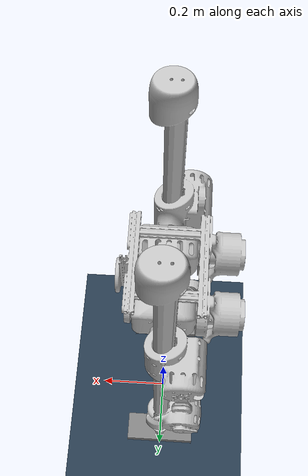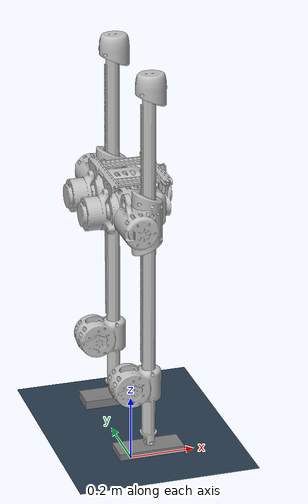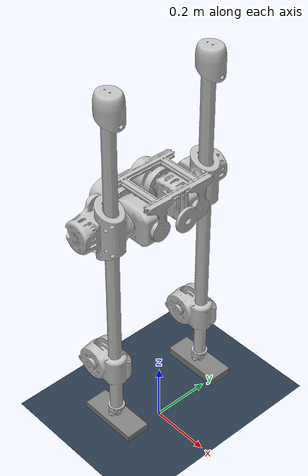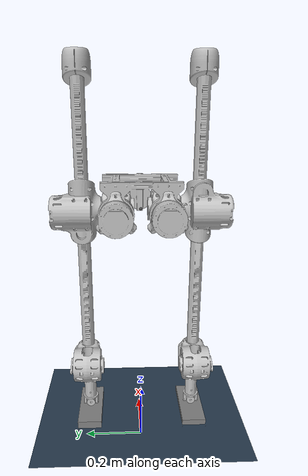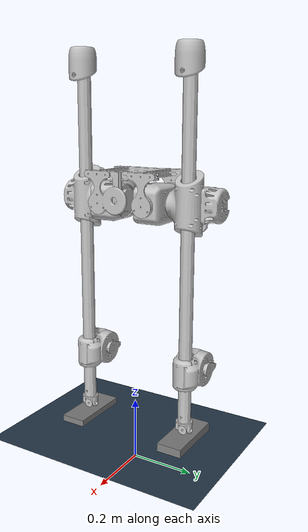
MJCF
<mujoco>
    <!-- Simulation properties -->
    <compiler texturedir="../meshes/"
        meshdir="../meshes/" balanceinertia="true"/>

    <option jacobian="auto">
        <flag multiccd="enable"/>
    </option>

    <option noslip_iterations="2"/>

    <!-- Rendering properties -->
    <visual>
        <rgba haze="0.1 0.1 0.1 1"/>
        <quality shadowsize="4096"/>
        <map stiffness="700" shadowscale="0.5" fogstart="10" fogend="15" zfar="40" haze="0.3"/>
    </visual>

    <!-- Assets -->
    <asset>
        <texture type="skybox" builtin="gradient" rgb1="0.3 0.5 0.7" rgb2="0 0 0" width="512" height="512"/>
        <texture name="texplane" type="2d" builtin="checker" rgb1=".2 .3 .4" rgb2=".1 0.15 0.2"
      width="512" height="512" mark="cross" markrgb=".8 .8 .8"/>

        <material name="matplane" reflectance="0.3" texture="texplane" texrepeat="1 1" texuniform="true"/>
    </asset>

    <asset>
        <hfield name="field" file="snowdon.png" size = "10 10 0.4 1"/>
    </asset>

    <!-- Include slider urdf -->
    <include file="slider_2_0_new_feet.xml"/>

    <!-- World description -->
    <worldbody>
        <!-- Lighting -->
        <light directional="true" diffuse=".4 .4 .4" specular="0.1 0.1 0.1" pos="0 0 5.0" dir="1 0 -1" castshadow="true"/>
        <light directional="true" diffuse=".6 .6 .6" specular="0.2 0.2 0.2" pos="0 0 4" dir="0 0 -1"/>

        <!-- Flat ground plane -->

        <geom name="ground" type="plane" size="0 0 1" pos="0 0 0.1" quat="1 0 0 0" material="matplane" condim="1"/>

    </worldbody>

</mujoco>

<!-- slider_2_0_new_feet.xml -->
<mujoco model="slider_joint_control">
  <compiler angle="radian" meshdir="../meshes/" autolimits="true"/>

  <!-- Default values -->
  <default>
    <joint limited = "true" damping = "0.0" armature = "0"/>
    <position forcelimited = "true" forcerange = "-30 30" />
    <velocity forcelimited = "true" forcerange = "-30 30" />

    <default class = "hip_roll_pos">
      <position kp="200.0" ctrllimited="true" forcelimited = "true" forcerange = "-144 144" ctrlrange="-0.3 0.3"/>
    </default>

    <default class = "hip_roll_vel">
      <velocity  kv="18.0" forcelimited = "true" forcerange = "-144 144" group="1" gear = "1"/>
    </default>

    <default class = "hip_pitch_pos">
      <position kp="100.0" ctrllimited="true" forcelimited = "true" forcerange = "-65 65" ctrlrange="-0.8 0.8"/>
    </default>

    <default class = "hip_pitch_vel">
      <velocity  kv="8.0" forcelimited = "true" forcerange = "-65 65" group="1" gear = "1"/>
    </default>

    <default class = "slide_joint">
      <position ctrllimited="true" kp="2000.0" gear="1" forcerange = "-200 200"/>
    </default>

    <default class = "slide_vel">
      <velocity kv="150.0" group="1" gear = "1" forcerange = "-100 100"/>
    </default>

    <default class = "foot_joint">
        <position forcelimited="true" ctrllimited="true" kp="60.0" gear = "1" forcerange="-15 15"/>
    </default>

    <default class = "foot_vel">
        <velocity forcelimited="true" kv="5.0" group="1" gear ="1" forcerange = "-15 15"/>
    </default>
  </default>

  <!-- Assets -->
  <asset>
    <mesh name="base_link" file="base_link.STL"/>
    <mesh name="Right_Pitch_Casing" file="Right_Pitch_Casing.STL"/>
    <mesh name="Right_Slide_Casing" file="Right_Slide_Casing.STL"/>
    <mesh name="Right_Leg" file="Right_Leg.STL"/>
    <mesh name="Right_Foot_Pitch_Link" file="Right_Foot_Pitch_Link.STL"/>
    <mesh name="Right_Foot" file="Right_Foot.STL"/>
    <mesh name="Left_Pitch_Casing" file="Left_Pitch_Casing.STL"/>
    <mesh name="Left_Slide_Casing" file="Left_Slide_Casing.STL"/>
    <mesh name="Left_Leg" file="Left_Leg.STL"/>
    <mesh name="Left_Foot_Pitch_Link" file="Left_Foot_Pitch_Link.STL"/>
    <mesh name="Left_Foot" file="Left_Foot.STL"/>
  </asset>

  <!-- Robot description -->
  <worldbody>
    <body name = "sensor_base">

    </body>

    <body name="base_link" pos="0 0 0.85">
      <freejoint/>

      <site name = "Torso"/>
      <site name = "Torso-rangefinder1" zaxis = "0 0 -1"/>
      <site name = "Torso-rangefinder2" zaxis = "0.2 0 -1"/>
      <site name = "Torso-rangefinder3" zaxis = "0.4 0 -1"/>
      <site name = "Torso-rangefinder4" zaxis = "0.6 0 -1"/>
      <site name = "Torso-rangefinder5" zaxis = "0.8 0 -1"/>

      <inertial pos="-0.04 0.0 0.0190139" quat="0.707106 0.707106 0.000977246 -0.0010287" mass="3.8" diaginertia="0.00413343 0.00271163 0.00231369"/>

      <geom type="mesh" rgba="0.752941 0.752941 0.752941 1" mesh="base_link"/>
      <body name="Right_Pitch_Casing" pos="0 -0.075 0">
        <inertial pos="-0.1 -0.000261818 7.57108e-06" quat="0.499137 0.498716 0.501955 0.500186" mass="2.5" diaginertia="0.00204306 0.00154557 0.00127401"/>
        <joint name="Right_Roll" pos="0 0 0" axis="-1 0 0" range="-1.57 0.35"/>
        <geom type="mesh" rgba="0.752941 0.752941 0.752941 1" mesh="Right_Pitch_Casing"/>
        <body name="Right_Slide_Casing" pos="0 -0.1042 0">
          <inertial pos="-0.0324497 -0.0178444 0.000925652" quat="0.877891 -0.0251846 0.00443872 0.478178" mass="1.2" diaginertia="0.00191679 0.00171145 0.000840947"/>
          <joint name="Right_Pitch" pos="0 0 0" axis="0 1 0" range="-1.57 1.57"/>
          <geom type="mesh" rgba="0.752941 0.752941 0.752941 1" mesh="Right_Slide_Casing"/>
          <body name="Right_Leg" pos="0 0 -0.7">
            <inertial pos="-0.0233998 0.000112329 0.455008" quat="0.707484 4.63574e-05 6.61193e-06 0.706729" mass="1.9" diaginertia="0.0432293 0.0423994 0.00149023"/>
            <joint name="Right_Slide" pos="0 0 0" axis="0 0 1" type="slide" range="-0.35 0.26"/>
            <geom type="mesh" rgba="0.752941 0.752941 0.752941 1" mesh="Right_Leg"/>
            <body name="Right_Foot_Pitch_Link" pos="0 0 0">
              <inertial pos="6.30628e-05 2.21613e-08 -1.27034e-08" quat="0.707095 2.01965e-06 2.01972e-06 0.707118" mass="0.04" diaginertia="4.37124e-06 4.32351e-06 4.11906e-06"/>
              <joint name="Right_Foot_Pitch" pos="0 0 0" axis="0 1 0" range="-0.52 0.52"/>
              <geom type="mesh" rgba="0.752941 0.752941 0.752941 1" mesh="Right_Foot_Pitch_Link"/>
              <body name="Right_Foot" pos="0 0 0">
                <inertial pos="-0.00123043 0 -0.0249007" quat="0 0.707113 0 0.7071" mass="0.2" diaginertia="0.00718389 0.00635924 0.00483524"/>
                <joint name="Right_Foot_Roll" pos="0 0 0" axis="1 0 0" range="-0.52 0.52"/>
                <geom name = "Right_Foot_Contact" type = "box" size = "0.1 0.04 0.01" mass = "0" pos = "0.0 0 -0.027" rgba = "0.5 0.5 0.5 1.0"/>
                <site name = "Right-Foot" size = "0.2 0.1 0.05" type = "box" rgba = "0.5 0.5 0.5 0.0"/>

                <geom size="0.001" pos="0.1 0.04 -0.044"/>
                <geom size="0.001" pos="0.1 -0.04 -0.044"/>
                <geom size="0.001" pos="-0.1 -0.04 -0.044"/>
                <geom size="0.001" pos="-0.1 0.04 -0.044"/>

              </body>
            </body>
          </body>
        </body>
      </body>
      <body name="Left_Pitch_Casing" pos="0 0.075 0">
        <inertial pos="-0.1 0.000261818 -7.57108e-06" quat="0.501955 0.500186 0.499137 0.498716" mass="2.5" diaginertia="0.00204306 0.00154557 0.00127401"/>
        <joint name="Left_Roll" pos="0 0 0" axis="-1 0 0" range="-0.35 1.57"/>
        <geom type="mesh" rgba="0.752941 0.752941 0.752941 1" mesh="Left_Pitch_Casing"/>
        <body name="Left_Slide_Casing" pos="0 0.1042 0">
          <inertial pos="-0.0324497 0.0178444 -0.000925651" quat="0.478178 -0.00443873 0.0251846 0.87789" mass="1.2" diaginertia="0.00191679 0.00171145 0.000840947"/>
          <joint name="Left_Pitch" pos="0 0 0" axis="0 -1 0" range="-1.57 1.57"/>
          <geom type="mesh" rgba="0.752941 0.752941 0.752941 1" mesh="Left_Slide_Casing"/>
          <body name="Left_Leg" pos="0 0 -0.7">
            <inertial pos="-0.0233998 0.000112329 0.455008" quat="0.707484 4.63574e-05 6.61193e-06 0.706729" mass="1.9" diaginertia="0.0432293 0.0423994 0.00149023"/>
            <joint name="Left_Slide" pos="0 0 0" axis="0 0 1" type="slide" range="-0.35 0.26"/>
            <geom type="mesh" rgba="0.752941 0.752941 0.752941 1" mesh="Left_Leg"/>
            <body name="Left_Foot_Pitch_Link" pos="0 0 0">
              <inertial pos="6.30628e-05 2.21613e-08 -1.27034e-08" quat="0.707095 2.01965e-06 2.01972e-06 0.707118" mass="0.04" diaginertia="4.37124e-06 4.32351e-06 4.11906e-06"/>
              <joint name="Left_Foot_Pitch" pos="0 0 0" axis="0 -1 0" range="-0.52 0.52"/>
              <geom type="mesh" rgba="0.752941 0.752941 0.752941 1" mesh="Left_Foot_Pitch_Link"/>
              <body name="Left_Foot" pos="0 0 0">
                <inertial pos="-0.00123043 0 -0.0249007" quat="0 0.707113 0 0.7071" mass="0.2" diaginertia="0.00718389 0.00635924 0.00483524"/>
                <joint name="Left_Foot_Roll" pos="0 0 0" axis="1 0 0" range="-0.52 0.52"/>
                <geom name = "Left_Foot_Contact" type = "box" size = "0.1 0.04 0.013" mass = "0" pos = "0.0 0 -0.027" rgba = "0.5 0.5 0.5 1.0"/>
                <site name = "Left-Foot" size = "0.2 0.1 0.05" type = "box" rgba = "0.5 0.5 0.5 0.0"/>

                <geom size="0.001" pos="0.1 0.04 -0.044"/>
                <geom size="0.001" pos="0.1 -0.04 -0.044"/>
                <geom size="0.001" pos="-0.1 -0.04 -0.044"/>
                <geom size="0.001" pos="-0.1 0.04 -0.044"/>
              </body>
            </body>
          </body>
        </body>
      </body>
    </body>
  </worldbody>

  <contact>
    <exclude body1= "base_link" body2 = "Right_Pitch_Casing"/>
    <exclude body1= "base_link" body2 = "Right_Slide_Casing"/>
    <exclude body1= "base_link" body2 = "Right_Leg"/>
    <exclude body1= "Right_Pitch_Casing" body2 = "Right_Leg"/>
    <exclude body1= "Right_Foot" body2 = "Right_Leg"/>

    <exclude body1= "base_link" body2 = "Left_Pitch_Casing"/>
    <exclude body1= "base_link" body2 = "Left_Slide_Casing"/>
    <exclude body1= "base_link" body2 = "Left_Leg"/>
    <exclude body1= "Left_Pitch_Casing" body2 = "Left_Leg"/>
    <exclude body1= "Left_Foot" body2 = "Left_Leg"/>
  </contact>

  <!-- Actuator Description -->
  <actuator>

        <!-- Left leg control -->

        <!-- Right leg control -->
        <position name="Right_Roll" joint="Right_Roll" class="hip_roll_pos"/>
        <velocity joint="Right_Roll" class="hip_roll_vel"/>

        <position name="Right_Pitch" joint="Right_Pitch" class="hip_pitch_pos"/>
        <velocity joint="Right_Pitch" class="hip_pitch_vel"/>

        <position name="Right_Slide" joint="Right_Slide" ctrlrange="-0.1 0.3" class="slide_joint"/>
        <velocity joint="Right_Slide" class="slide_vel"/>

        <position name="Right_Foot_Roll" joint="Right_Foot_Roll" ctrlrange="-0.5 0.5" class="foot_joint"/>
        <velocity joint="Right_Foot_Roll" class = "foot_vel"/>

        <position name="Right_Foot_Pitch" joint="Right_Foot_Pitch" ctrlrange="-0.5 0.5" class="foot_joint"/>
        <velocity joint="Right_Foot_Pitch" class = "foot_vel"/>

        <position name="Left_Roll" joint="Left_Roll" class="hip_roll_pos"/>
        <velocity joint="Left_Roll" class="hip_roll_vel"/>

        <position name="Left_Pitch" joint="Left_Pitch" class="hip_pitch_pos"/>
        <velocity joint="Left_Pitch" class="hip_pitch_vel"/>

        <position name="Left_Slide" joint="Left_Slide" ctrlrange="-0.1 0.3" class="slide_joint"/>
        <velocity joint="Left_Slide" class="slide_vel"/>

        <position name="Left_Foot_Roll" joint="Left_Foot_Roll" ctrlrange="-0.5 0.5" class="foot_joint"/>
        <velocity joint="Left_Foot_Roll" class = "foot_vel"/>

        <position name="Left_Foot_Pitch" joint="Left_Foot_Pitch" ctrlrange="-0.5 0.5" class="foot_joint"/>
        <velocity joint="Left_Foot_Pitch" class = "foot_vel"/>
    </actuator>

    <!-- Sensors -->
    <sensor>
        <velocimeter name = "right-foot-vel" site = "Right-Foot"/>
        <velocimeter name = "left-foot-vel" site = "Left-Foot"/>

        <velocimeter name = "body-vel" site = "Torso"/>
        <gyro name = "body-gyro" site = "Torso"/>
        <accelerometer name = "body-accel" site = "Torso"/>

        <touch name = "right-foot-touch" site = "Right-Foot"/>
        <touch name = "left-foot-touch" site = "Left-Foot"/>

    </sensor>

</mujoco>
